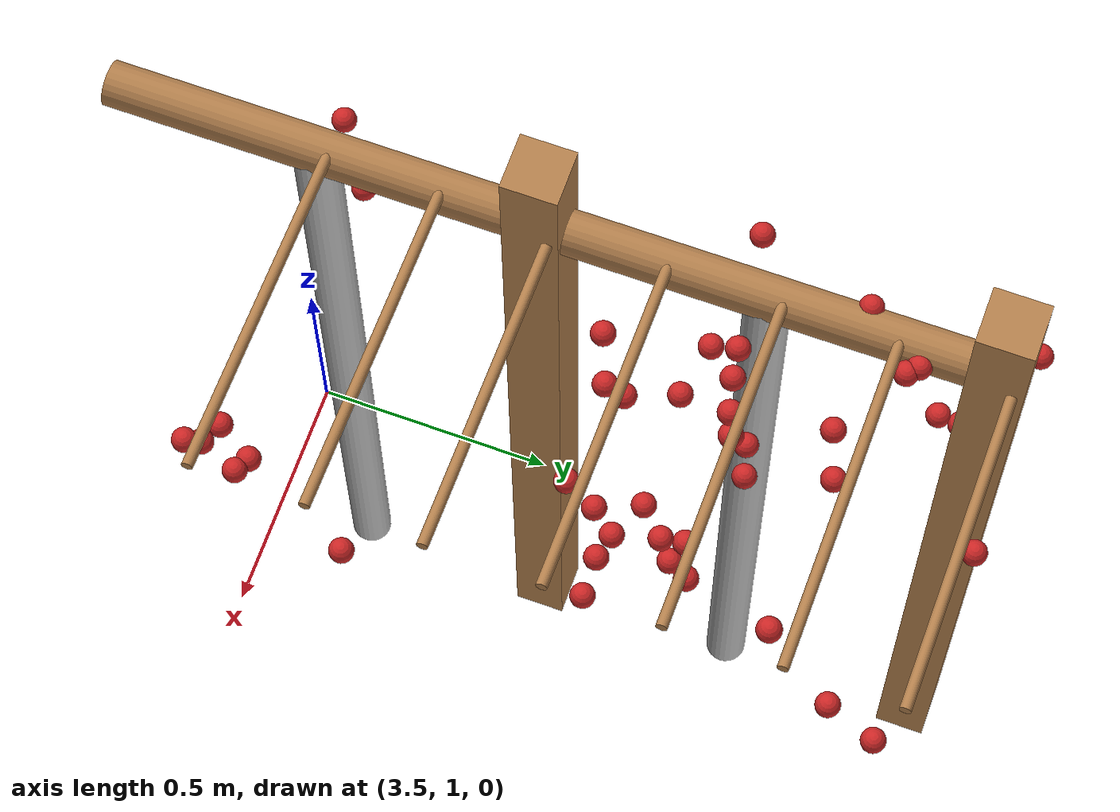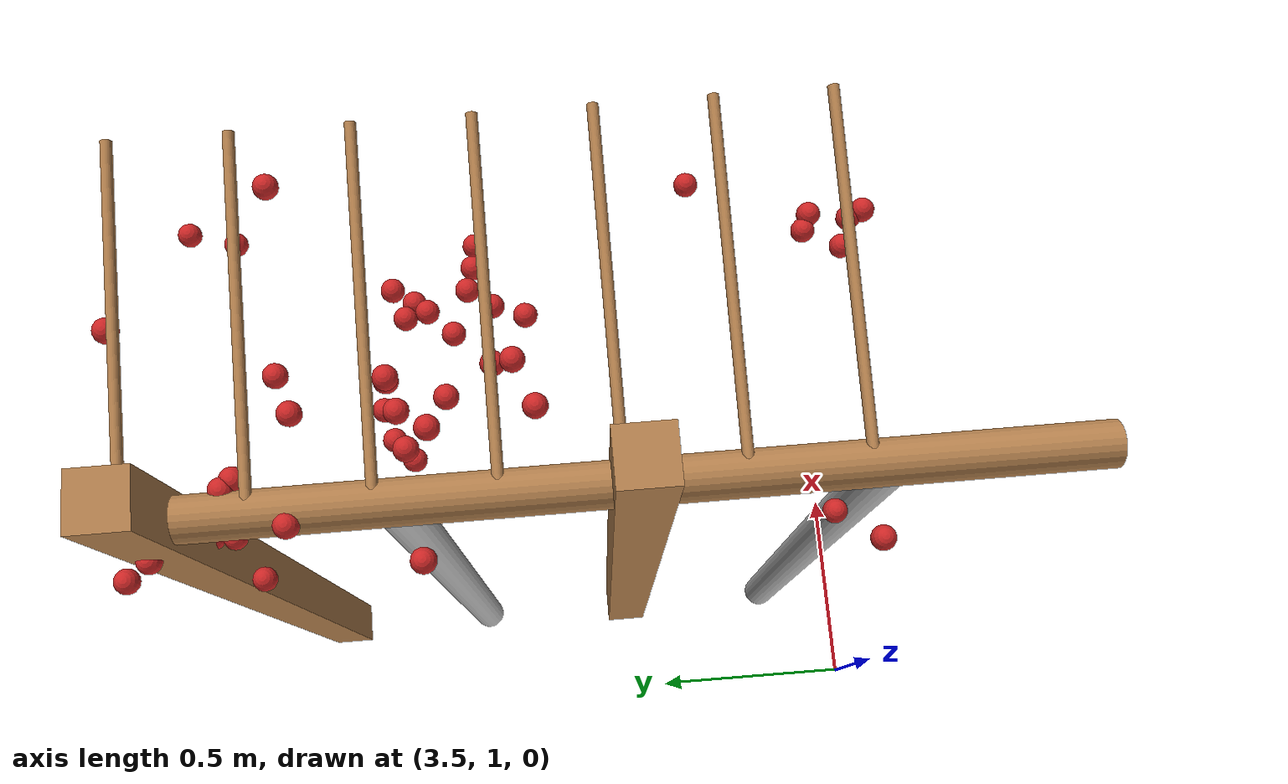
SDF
<sdf version="1.4">
 <model name="pergola">
  <include><name>post_23</name><pose>3.75 1.6 0 0 0 0</pose><uri>model://post</uri></include>
  <include><name>post_24</name><pose>3.75 2.4000000000000004 0 0 0 0</pose><uri>model://post</uri></include>
  <include>
   <name>tree_19</name>
   <pose>3.75 1.2000000000000002 0 0 0 0</pose>
   <uri>model://tree_trunk</uri>
  </include>
  <include><name>tree_20</name><pose>3.75 2.0 0 0 0 0</pose><uri>model://tree_trunk</uri></include>
  <link name="baseBranch_19">
   <pose>3.75 1.2000000000000002 1.8 1.5707963267948966 0 0</pose>
   <collision name="collision">
    <geometry><cylinder><radius>0.04</radius><length>0.74</length></cylinder></geometry>
   </collision>
   <visual name="visual">
    <geometry><cylinder><radius>0.04</radius><length>0.74</length></cylinder></geometry>
    <material><script><name>Gazebo/WoodFloor</name></script></material>
   </visual>
   <inertial>
    <mass>10</mass>
    <inertia>
     <ixx>0.4603333333333333</ixx>
     <ixy>0.0</ixy>
     <ixz>0.0</ixz>
     <iyy>0.4603333333333333</iyy>
     <iyz>0.0</iyz>
     <izz>0.008</izz>
    </inertia>
   </inertial>
  </link>
  <link name="baseBranch_20">
   <pose>3.75 2.0 1.8 1.5707963267948966 0 0</pose>
   <collision name="collision">
    <geometry><cylinder><radius>0.04</radius><length>0.74</length></cylinder></geometry>
   </collision>
   <visual name="visual">
    <geometry><cylinder><radius>0.04</radius><length>0.74</length></cylinder></geometry>
    <material><script><name>Gazebo/WoodFloor</name></script></material>
   </visual>
   <inertial>
    <mass>10</mass>
    <inertia>
     <ixx>0.4603333333333333</ixx>
     <ixy>0.0</ixy>
     <ixz>0.0</ixz>
     <iyy>0.4603333333333333</iyy>
     <iyz>0.0</iyz>
     <izz>0.008</izz>
    </inertia>
   </inertial>
  </link>
  <link name="vine_156">
   <pose>4.0625 1.2300000000000002 1.85 0 1.4909663410826592 0</pose>
   <collision name="collision">
    <geometry><cylinder><radius>0.01</radius><length>0.6269968101992226</length></cylinder></geometry>
   </collision>
   <visual name="visual">
    <geometry><cylinder><radius>0.01</radius><length>0.6269968101992226</length></cylinder></geometry>
    <material><script><name>Gazebo/WoodFloor</name></script></material>
   </visual>
   <inertial>
    <mass>5</mass>
    <inertia>
     <ixx>0.1639270833333333</ixx>
     <ixy>0.0</ixy>
     <ixz>0.0</ixz>
     <iyy>0.1639270833333333</iyy>
     <iyz>0.0</iyz>
     <izz>0.00025</izz>
    </inertia>
   </inertial>
  </link>
  <link name="vine_158">
   <pose>4.0625 1.4300000000000002 1.85 0 1.4909663410826592 0</pose>
   <collision name="collision">
    <geometry><cylinder><radius>0.01</radius><length>0.6269968101992226</length></cylinder></geometry>
   </collision>
   <visual name="visual">
    <geometry><cylinder><radius>0.01</radius><length>0.6269968101992226</length></cylinder></geometry>
    <material><script><name>Gazebo/WoodFloor</name></script></material>
   </visual>
   <inertial>
    <mass>5</mass>
    <inertia>
     <ixx>0.1639270833333333</ixx>
     <ixy>0.0</ixy>
     <ixz>0.0</ixz>
     <iyy>0.1639270833333333</iyy>
     <iyz>0.0</iyz>
     <izz>0.00025</izz>
    </inertia>
   </inertial>
  </link>
  <link name="vine_160">
   <pose>4.0625 1.6300000000000001 1.85 0 1.4909663410826592 0</pose>
   <collision name="collision">
    <geometry><cylinder><radius>0.01</radius><length>0.6269968101992226</length></cylinder></geometry>
   </collision>
   <visual name="visual">
    <geometry><cylinder><radius>0.01</radius><length>0.6269968101992226</length></cylinder></geometry>
    <material><script><name>Gazebo/WoodFloor</name></script></material>
   </visual>
   <inertial>
    <mass>5</mass>
    <inertia>
     <ixx>0.1639270833333333</ixx>
     <ixy>0.0</ixy>
     <ixz>0.0</ixz>
     <iyy>0.1639270833333333</iyy>
     <iyz>0.0</iyz>
     <izz>0.00025</izz>
    </inertia>
   </inertial>
  </link>
  <link name="vine_162">
   <pose>4.0625 1.83 1.85 0 1.4909663410826592 0</pose>
   <collision name="collision">
    <geometry><cylinder><radius>0.01</radius><length>0.6269968101992226</length></cylinder></geometry>
   </collision>
   <visual name="visual">
    <geometry><cylinder><radius>0.01</radius><length>0.6269968101992226</length></cylinder></geometry>
    <material><script><name>Gazebo/WoodFloor</name></script></material>
   </visual>
   <inertial>
    <mass>5</mass>
    <inertia>
     <ixx>0.1639270833333333</ixx>
     <ixy>0.0</ixy>
     <ixz>0.0</ixz>
     <iyy>0.1639270833333333</iyy>
     <iyz>0.0</iyz>
     <izz>0.00025</izz>
    </inertia>
   </inertial>
  </link>
  <link name="vine_164">
   <pose>4.0625 2.03 1.85 0 1.4909663410826592 0</pose>
   <collision name="collision">
    <geometry><cylinder><radius>0.01</radius><length>0.6269968101992226</length></cylinder></geometry>
   </collision>
   <visual name="visual">
    <geometry><cylinder><radius>0.01</radius><length>0.6269968101992226</length></cylinder></geometry>
    <material><script><name>Gazebo/WoodFloor</name></script></material>
   </visual>
   <inertial>
    <mass>5</mass>
    <inertia>
     <ixx>0.1639270833333333</ixx>
     <ixy>0.0</ixy>
     <ixz>0.0</ixz>
     <iyy>0.1639270833333333</iyy>
     <iyz>0.0</iyz>
     <izz>0.00025</izz>
    </inertia>
   </inertial>
  </link>
  <link name="vine_166">
   <pose>4.0625 2.23 1.85 0 1.4909663410826592 0</pose>
   <collision name="collision">
    <geometry><cylinder><radius>0.01</radius><length>0.6269968101992226</length></cylinder></geometry>
   </collision>
   <visual name="visual">
    <geometry><cylinder><radius>0.01</radius><length>0.6269968101992226</length></cylinder></geometry>
    <material><script><name>Gazebo/WoodFloor</name></script></material>
   </visual>
   <inertial>
    <mass>5</mass>
    <inertia>
     <ixx>0.1639270833333333</ixx>
     <ixy>0.0</ixy>
     <ixz>0.0</ixz>
     <iyy>0.1639270833333333</iyy>
     <iyz>0.0</iyz>
     <izz>0.00025</izz>
    </inertia>
   </inertial>
  </link>
  <link name="vine_168">
   <pose>4.0625 2.43 1.85 0 1.4909663410826592 0</pose>
   <collision name="collision">
    <geometry><cylinder><radius>0.01</radius><length>0.6269968101992226</length></cylinder></geometry>
   </collision>
   <visual name="visual">
    <geometry><cylinder><radius>0.01</radius><length>0.6269968101992226</length></cylinder></geometry>
    <material><script><name>Gazebo/WoodFloor</name></script></material>
   </visual>
   <inertial>
    <mass>5</mass>
    <inertia>
     <ixx>0.1639270833333333</ixx>
     <ixy>0.0</ixy>
     <ixz>0.0</ixz>
     <iyy>0.1639270833333333</iyy>
     <iyz>0.0</iyz>
     <izz>0.00025</izz>
    </inertia>
   </inertial>
  </link>
  <link name="fruit_8">
   <pose>3.676006407062482 2.2650768706055735 1.5762889406739493 0 0 0</pose>
   <collision name="fruit_collision_8"><geometry><sphere><radius>0.022</radius></sphere></geometry></collision>
   <visual name="visual">
    <geometry><sphere><radius>0.022</radius></sphere></geometry>
    <material><script><name>Gazebo/Red</name></script></material>
   </visual>
   <inertial>
    <mass>0.05</mass>
    <inertia>
     <ixx>9.679999999999999e-06</ixx>
     <ixy>0.0</ixy>
     <ixz>0.0</ixz>
     <iyy>9.679999999999999e-06</iyy>
     <iyz>0.0</iyz>
     <izz>9.679999999999999e-06</izz>
    </inertia>
   </inertial>
   <sensor name="fruit_contact_8" type="contact">
    <plugin name="contact_plugin_8" filename="libcontact_plugin.so"/>
    <contact><collision>fruit_collision_8</collision><topic>fruit_contact_topic_8</topic></contact>
   </sensor>
  </link>
  <link name="fruit_57">
   <pose>3.9361323129504013 1.9135651414401171 1.7332009350218411 0 0 0</pose>
   <collision name="fruit_collision_57"><geometry><sphere><radius>0.022</radius></sphere></geometry></collision>
   <visual name="visual">
    <geometry><sphere><radius>0.022</radius></sphere></geometry>
    <material><script><name>Gazebo/Red</name></script></material>
   </visual>
   <inertial>
    <mass>0.05</mass>
    <inertia>
     <ixx>9.679999999999999e-06</ixx>
     <ixy>0.0</ixy>
     <ixz>0.0</ixz>
     <iyy>9.679999999999999e-06</iyy>
     <iyz>0.0</iyz>
     <izz>9.679999999999999e-06</izz>
    </inertia>
   </inertial>
   <sensor name="fruit_contact_57" type="contact">
    <plugin name="contact_plugin_57" filename="libcontact_plugin.so"/>
    <contact><collision>fruit_collision_57</collision><topic>fruit_contact_topic_57</topic></contact>
   </sensor>
  </link>
  <link name="fruit_83">
   <pose>4.2667190792807 1.8609789345773817 1.5706060055773154 0 0 0</pose>
   <collision name="fruit_collision_83"><geometry><sphere><radius>0.022</radius></sphere></geometry></collision>
   <visual name="visual">
    <geometry><sphere><radius>0.022</radius></sphere></geometry>
    <material><script><name>Gazebo/Red</name></script></material>
   </visual>
   <inertial>
    <mass>0.05</mass>
    <inertia>
     <ixx>9.679999999999999e-06</ixx>
     <ixy>0.0</ixy>
     <ixz>0.0</ixz>
     <iyy>9.679999999999999e-06</iyy>
     <iyz>0.0</iyz>
     <izz>9.679999999999999e-06</izz>
    </inertia>
   </inertial>
   <sensor name="fruit_contact_83" type="contact">
    <plugin name="contact_plugin_83" filename="libcontact_plugin.so"/>
    <contact><collision>fruit_collision_83</collision><topic>fruit_contact_topic_83</topic></contact>
   </sensor>
  </link>
  <link name="fruit_95">
   <pose>4.301185927190342 2.186084560641931 1.8156875277033604 0 0 0</pose>
   <collision name="fruit_collision_95"><geometry><sphere><radius>0.022</radius></sphere></geometry></collision>
   <visual name="visual">
    <geometry><sphere><radius>0.022</radius></sphere></geometry>
    <material><script><name>Gazebo/Red</name></script></material>
   </visual>
   <inertial>
    <mass>0.05</mass>
    <inertia>
     <ixx>9.679999999999999e-06</ixx>
     <ixy>0.0</ixy>
     <ixz>0.0</ixz>
     <iyy>9.679999999999999e-06</iyy>
     <iyz>0.0</iyz>
     <izz>9.679999999999999e-06</izz>
    </inertia>
   </inertial>
   <sensor name="fruit_contact_95" type="contact">
    <plugin name="contact_plugin_95" filename="libcontact_plugin.so"/>
    <contact><collision>fruit_collision_95</collision><topic>fruit_contact_topic_95</topic></contact>
   </sensor>
  </link>
  <link name="fruit_155">
   <pose>3.8711005714008366 1.9927011376451031 1.5640726454635676 0 0 0</pose>
   <collision name="fruit_collision_155"><geometry><sphere><radius>0.022</radius></sphere></geometry></collision>
   <visual name="visual">
    <geometry><sphere><radius>0.022</radius></sphere></geometry>
    <material><script><name>Gazebo/Red</name></script></material>
   </visual>
   <inertial>
    <mass>0.05</mass>
    <inertia>
     <ixx>9.679999999999999e-06</ixx>
     <ixy>0.0</ixy>
     <ixz>0.0</ixz>
     <iyy>9.679999999999999e-06</iyy>
     <iyz>0.0</iyz>
     <izz>9.679999999999999e-06</izz>
    </inertia>
   </inertial>
   <sensor name="fruit_contact_155" type="contact">
    <plugin name="contact_plugin_155" filename="libcontact_plugin.so"/>
    <contact><collision>fruit_collision_155</collision><topic>fruit_contact_topic_155</topic></contact>
   </sensor>
  </link>
  <link name="fruit_163">
   <pose>3.7216625745566 2.1677110068053027 1.8257030987460952 0 0 0</pose>
   <collision name="fruit_collision_163"><geometry><sphere><radius>0.022</radius></sphere></geometry></collision>
   <visual name="visual">
    <geometry><sphere><radius>0.022</radius></sphere></geometry>
    <material><script><name>Gazebo/Red</name></script></material>
   </visual>
   <inertial>
    <mass>0.05</mass>
    <inertia>
     <ixx>9.679999999999999e-06</ixx>
     <ixy>0.0</ixy>
     <ixz>0.0</ixz>
     <iyy>9.679999999999999e-06</iyy>
     <iyz>0.0</iyz>
     <izz>9.679999999999999e-06</izz>
    </inertia>
   </inertial>
   <sensor name="fruit_contact_163" type="contact">
    <plugin name="contact_plugin_163" filename="libcontact_plugin.so"/>
    <contact><collision>fruit_collision_163</collision><topic>fruit_contact_topic_163</topic></contact>
   </sensor>
  </link>
  <link name="fruit_178">
   <pose>4.197961908283461 1.1897041472636551 1.604897090031209 0 0 0</pose>
   <collision name="fruit_collision_178"><geometry><sphere><radius>0.022</radius></sphere></geometry></collision>
   <visual name="visual">
    <geometry><sphere><radius>0.022</radius></sphere></geometry>
    <material><script><name>Gazebo/Red</name></script></material>
   </visual>
   <inertial>
    <mass>0.05</mass>
    <inertia>
     <ixx>9.679999999999999e-06</ixx>
     <ixy>0.0</ixy>
     <ixz>0.0</ixz>
     <iyy>9.679999999999999e-06</iyy>
     <iyz>0.0</iyz>
     <izz>9.679999999999999e-06</izz>
    </inertia>
   </inertial>
   <sensor name="fruit_contact_178" type="contact">
    <plugin name="contact_plugin_178" filename="libcontact_plugin.so"/>
    <contact><collision>fruit_collision_178</collision><topic>fruit_contact_topic_178</topic></contact>
   </sensor>
  </link>
  <link name="fruit_186">
   <pose>3.8673598561128717 1.9406960679267722 1.8051530244516856 0 0 0</pose>
   <collision name="fruit_collision_186"><geometry><sphere><radius>0.022</radius></sphere></geometry></collision>
   <visual name="visual">
    <geometry><sphere><radius>0.022</radius></sphere></geometry>
    <material><script><name>Gazebo/Red</name></script></material>
   </visual>
   <inertial>
    <mass>0.05</mass>
    <inertia>
     <ixx>9.679999999999999e-06</ixx>
     <ixy>0.0</ixy>
     <ixz>0.0</ixz>
     <iyy>9.679999999999999e-06</iyy>
     <iyz>0.0</iyz>
     <izz>9.679999999999999e-06</izz>
    </inertia>
   </inertial>
   <sensor name="fruit_contact_186" type="contact">
    <plugin name="contact_plugin_186" filename="libcontact_plugin.so"/>
    <contact><collision>fruit_collision_186</collision><topic>fruit_contact_topic_186</topic></contact>
   </sensor>
  </link>
  <link name="fruit_189">
   <pose>4.33940653644324 1.4624821867592084 1.6070610645935492 0 0 0</pose>
   <collision name="fruit_collision_189"><geometry><sphere><radius>0.022</radius></sphere></geometry></collision>
   <visual name="visual">
    <geometry><sphere><radius>0.022</radius></sphere></geometry>
    <material><script><name>Gazebo/Red</name></script></material>
   </visual>
   <inertial>
    <mass>0.05</mass>
    <inertia>
     <ixx>9.679999999999999e-06</ixx>
     <ixy>0.0</ixy>
     <ixz>0.0</ixz>
     <iyy>9.679999999999999e-06</iyy>
     <iyz>0.0</iyz>
     <izz>9.679999999999999e-06</izz>
    </inertia>
   </inertial>
   <sensor name="fruit_contact_189" type="contact">
    <plugin name="contact_plugin_189" filename="libcontact_plugin.so"/>
    <contact><collision>fruit_collision_189</collision><topic>fruit_contact_topic_189</topic></contact>
   </sensor>
  </link>
  <link name="fruit_208">
   <pose>4.069500883490373 2.4527747593494102 1.818738600354052 0 0 0</pose>
   <collision name="fruit_collision_208"><geometry><sphere><radius>0.022</radius></sphere></geometry></collision>
   <visual name="visual">
    <geometry><sphere><radius>0.022</radius></sphere></geometry>
    <material><script><name>Gazebo/Red</name></script></material>
   </visual>
   <inertial>
    <mass>0.05</mass>
    <inertia>
     <ixx>9.679999999999999e-06</ixx>
     <ixy>0.0</ixy>
     <ixz>0.0</ixz>
     <iyy>9.679999999999999e-06</iyy>
     <iyz>0.0</iyz>
     <izz>9.679999999999999e-06</izz>
    </inertia>
   </inertial>
   <sensor name="fruit_contact_208" type="contact">
    <plugin name="contact_plugin_208" filename="libcontact_plugin.so"/>
    <contact><collision>fruit_collision_208</collision><topic>fruit_contact_topic_208</topic></contact>
   </sensor>
  </link>
  <link name="fruit_223">
   <pose>3.8956518178005966 1.7637184672781563 1.7816706102022415 0 0 0</pose>
   <collision name="fruit_collision_223"><geometry><sphere><radius>0.022</radius></sphere></geometry></collision>
   <visual name="visual">
    <geometry><sphere><radius>0.022</radius></sphere></geometry>
    <material><script><name>Gazebo/Red</name></script></material>
   </visual>
   <inertial>
    <mass>0.05</mass>
    <inertia>
     <ixx>9.679999999999999e-06</ixx>
     <ixy>0.0</ixy>
     <ixz>0.0</ixz>
     <iyy>9.679999999999999e-06</iyy>
     <iyz>0.0</iyz>
     <izz>9.679999999999999e-06</izz>
    </inertia>
   </inertial>
   <sensor name="fruit_contact_223" type="contact">
    <plugin name="contact_plugin_223" filename="libcontact_plugin.so"/>
    <contact><collision>fruit_collision_223</collision><topic>fruit_contact_topic_223</topic></contact>
   </sensor>
  </link>
  <link name="fruit_269">
   <pose>4.307890976531679 2.303075277976322 1.5666094583672132 0 0 0</pose>
   <collision name="fruit_collision_269"><geometry><sphere><radius>0.022</radius></sphere></geometry></collision>
   <visual name="visual">
    <geometry><sphere><radius>0.022</radius></sphere></geometry>
    <material><script><name>Gazebo/Red</name></script></material>
   </visual>
   <inertial>
    <mass>0.05</mass>
    <inertia>
     <ixx>9.679999999999999e-06</ixx>
     <ixy>0.0</ixy>
     <ixz>0.0</ixz>
     <iyy>9.679999999999999e-06</iyy>
     <iyz>0.0</iyz>
     <izz>9.679999999999999e-06</izz>
    </inertia>
   </inertial>
   <sensor name="fruit_contact_269" type="contact">
    <plugin name="contact_plugin_269" filename="libcontact_plugin.so"/>
    <contact><collision>fruit_collision_269</collision><topic>fruit_contact_topic_269</topic></contact>
   </sensor>
  </link>
  <link name="fruit_279">
   <pose>4.104877058534046 1.7742975596749313 1.6287608941284089 0 0 0</pose>
   <collision name="fruit_collision_279"><geometry><sphere><radius>0.022</radius></sphere></geometry></collision>
   <visual name="visual">
    <geometry><sphere><radius>0.022</radius></sphere></geometry>
    <material><script><name>Gazebo/Red</name></script></material>
   </visual>
   <inertial>
    <mass>0.05</mass>
    <inertia>
     <ixx>9.679999999999999e-06</ixx>
     <ixy>0.0</ixy>
     <ixz>0.0</ixz>
     <iyy>9.679999999999999e-06</iyy>
     <iyz>0.0</iyz>
     <izz>9.679999999999999e-06</izz>
    </inertia>
   </inertial>
   <sensor name="fruit_contact_279" type="contact">
    <plugin name="contact_plugin_279" filename="libcontact_plugin.so"/>
    <contact><collision>fruit_collision_279</collision><topic>fruit_contact_topic_279</topic></contact>
   </sensor>
  </link>
  <link name="fruit_283">
   <pose>4.090861763009754 1.9066144626308015 1.5973363994326608 0 0 0</pose>
   <collision name="fruit_collision_283"><geometry><sphere><radius>0.022</radius></sphere></geometry></collision>
   <visual name="visual">
    <geometry><sphere><radius>0.022</radius></sphere></geometry>
    <material><script><name>Gazebo/Red</name></script></material>
   </visual>
   <inertial>
    <mass>0.05</mass>
    <inertia>
     <ixx>9.679999999999999e-06</ixx>
     <ixy>0.0</ixy>
     <ixz>0.0</ixz>
     <iyy>9.679999999999999e-06</iyy>
     <iyz>0.0</iyz>
     <izz>9.679999999999999e-06</izz>
    </inertia>
   </inertial>
   <sensor name="fruit_contact_283" type="contact">
    <plugin name="contact_plugin_283" filename="libcontact_plugin.so"/>
    <contact><collision>fruit_collision_283</collision><topic>fruit_contact_topic_283</topic></contact>
   </sensor>
  </link>
  <link name="fruit_286">
   <pose>3.921469292328914 2.1721620067773264 1.7595511028058892 0 0 0</pose>
   <collision name="fruit_collision_286"><geometry><sphere><radius>0.022</radius></sphere></geometry></collision>
   <visual name="visual">
    <geometry><sphere><radius>0.022</radius></sphere></geometry>
    <material><script><name>Gazebo/Red</name></script></material>
   </visual>
   <inertial>
    <mass>0.05</mass>
    <inertia>
     <ixx>9.679999999999999e-06</ixx>
     <ixy>0.0</ixy>
     <ixz>0.0</ixz>
     <iyy>9.679999999999999e-06</iyy>
     <iyz>0.0</iyz>
     <izz>9.679999999999999e-06</izz>
    </inertia>
   </inertial>
   <sensor name="fruit_contact_286" type="contact">
    <plugin name="contact_plugin_286" filename="libcontact_plugin.so"/>
    <contact><collision>fruit_collision_286</collision><topic>fruit_contact_topic_286</topic></contact>
   </sensor>
  </link>
  <link name="fruit_315">
   <pose>3.7353817605391018 1.9532888564288293 1.784327385788886 0 0 0</pose>
   <collision name="fruit_collision_315"><geometry><sphere><radius>0.022</radius></sphere></geometry></collision>
   <visual name="visual">
    <geometry><sphere><radius>0.022</radius></sphere></geometry>
    <material><script><name>Gazebo/Red</name></script></material>
   </visual>
   <inertial>
    <mass>0.05</mass>
    <inertia>
     <ixx>9.679999999999999e-06</ixx>
     <ixy>0.0</ixy>
     <ixz>0.0</ixz>
     <iyy>9.679999999999999e-06</iyy>
     <iyz>0.0</iyz>
     <izz>9.679999999999999e-06</izz>
    </inertia>
   </inertial>
   <sensor name="fruit_contact_315" type="contact">
    <plugin name="contact_plugin_315" filename="libcontact_plugin.so"/>
    <contact><collision>fruit_collision_315</collision><topic>fruit_contact_topic_315</topic></contact>
   </sensor>
  </link>
  <link name="fruit_350">
   <pose>3.8062336221605646 2.255665683705596 1.8076341787049552 0 0 0</pose>
   <collision name="fruit_collision_350"><geometry><sphere><radius>0.022</radius></sphere></geometry></collision>
   <visual name="visual">
    <geometry><sphere><radius>0.022</radius></sphere></geometry>
    <material><script><name>Gazebo/Red</name></script></material>
   </visual>
   <inertial>
    <mass>0.05</mass>
    <inertia>
     <ixx>9.679999999999999e-06</ixx>
     <ixy>0.0</ixy>
     <ixz>0.0</ixz>
     <iyy>9.679999999999999e-06</iyy>
     <iyz>0.0</iyz>
     <izz>9.679999999999999e-06</izz>
    </inertia>
   </inertial>
   <sensor name="fruit_contact_350" type="contact">
    <plugin name="contact_plugin_350" filename="libcontact_plugin.so"/>
    <contact><collision>fruit_collision_350</collision><topic>fruit_contact_topic_350</topic></contact>
   </sensor>
  </link>
  <link name="fruit_369">
   <pose>3.759000258667779 2.358733231369679 1.561660712672167 0 0 0</pose>
   <collision name="fruit_collision_369"><geometry><sphere><radius>0.022</radius></sphere></geometry></collision>
   <visual name="visual">
    <geometry><sphere><radius>0.022</radius></sphere></geometry>
    <material><script><name>Gazebo/Red</name></script></material>
   </visual>
   <inertial>
    <mass>0.05</mass>
    <inertia>
     <ixx>9.679999999999999e-06</ixx>
     <ixy>0.0</ixy>
     <ixz>0.0</ixz>
     <iyy>9.679999999999999e-06</iyy>
     <iyz>0.0</iyz>
     <izz>9.679999999999999e-06</izz>
    </inertia>
   </inertial>
   <sensor name="fruit_contact_369" type="contact">
    <plugin name="contact_plugin_369" filename="libcontact_plugin.so"/>
    <contact><collision>fruit_collision_369</collision><topic>fruit_contact_topic_369</topic></contact>
   </sensor>
  </link>
  <link name="fruit_372">
   <pose>4.253187365403175 1.149392021733807 1.633120015647524 0 0 0</pose>
   <collision name="fruit_collision_372"><geometry><sphere><radius>0.022</radius></sphere></geometry></collision>
   <visual name="visual">
    <geometry><sphere><radius>0.022</radius></sphere></geometry>
    <material><script><name>Gazebo/Red</name></script></material>
   </visual>
   <inertial>
    <mass>0.05</mass>
    <inertia>
     <ixx>9.679999999999999e-06</ixx>
     <ixy>0.0</ixy>
     <ixz>0.0</ixz>
     <iyy>9.679999999999999e-06</iyy>
     <iyz>0.0</iyz>
     <izz>9.679999999999999e-06</izz>
    </inertia>
   </inertial>
   <sensor name="fruit_contact_372" type="contact">
    <plugin name="contact_plugin_372" filename="libcontact_plugin.so"/>
    <contact><collision>fruit_collision_372</collision><topic>fruit_contact_topic_372</topic></contact>
   </sensor>
  </link>
  <link name="fruit_422">
   <pose>3.9949429824086877 2.19803512601655 1.7376058160941192 0 0 0</pose>
   <collision name="fruit_collision_422"><geometry><sphere><radius>0.022</radius></sphere></geometry></collision>
   <visual name="visual">
    <geometry><sphere><radius>0.022</radius></sphere></geometry>
    <material><script><name>Gazebo/Red</name></script></material>
   </visual>
   <inertial>
    <mass>0.05</mass>
    <inertia>
     <ixx>9.679999999999999e-06</ixx>
     <ixy>0.0</ixy>
     <ixz>0.0</ixz>
     <iyy>9.679999999999999e-06</iyy>
     <iyz>0.0</iyz>
     <izz>9.679999999999999e-06</izz>
    </inertia>
   </inertial>
   <sensor name="fruit_contact_422" type="contact">
    <plugin name="contact_plugin_422" filename="libcontact_plugin.so"/>
    <contact><collision>fruit_collision_422</collision><topic>fruit_contact_topic_422</topic></contact>
   </sensor>
  </link>
  <link name="fruit_447">
   <pose>3.9785184481252465 1.7963353760124399 1.7786980864682906 0 0 0</pose>
   <collision name="fruit_collision_447"><geometry><sphere><radius>0.022</radius></sphere></geometry></collision>
   <visual name="visual">
    <geometry><sphere><radius>0.022</radius></sphere></geometry>
    <material><script><name>Gazebo/Red</name></script></material>
   </visual>
   <inertial>
    <mass>0.05</mass>
    <inertia>
     <ixx>9.679999999999999e-06</ixx>
     <ixy>0.0</ixy>
     <ixz>0.0</ixz>
     <iyy>9.679999999999999e-06</iyy>
     <iyz>0.0</iyz>
     <izz>9.679999999999999e-06</izz>
    </inertia>
   </inertial>
   <sensor name="fruit_contact_447" type="contact">
    <plugin name="contact_plugin_447" filename="libcontact_plugin.so"/>
    <contact><collision>fruit_collision_447</collision><topic>fruit_contact_topic_447</topic></contact>
   </sensor>
  </link>
  <link name="fruit_474">
   <pose>4.128786302933672 1.9928160062900515 1.591700708201702 0 0 0</pose>
   <collision name="fruit_collision_474"><geometry><sphere><radius>0.022</radius></sphere></geometry></collision>
   <visual name="visual">
    <geometry><sphere><radius>0.022</radius></sphere></geometry>
    <material><script><name>Gazebo/Red</name></script></material>
   </visual>
   <inertial>
    <mass>0.05</mass>
    <inertia>
     <ixx>9.679999999999999e-06</ixx>
     <ixy>0.0</ixy>
     <ixz>0.0</ixz>
     <iyy>9.679999999999999e-06</iyy>
     <iyz>0.0</iyz>
     <izz>9.679999999999999e-06</izz>
    </inertia>
   </inertial>
   <sensor name="fruit_contact_474" type="contact">
    <plugin name="contact_plugin_474" filename="libcontact_plugin.so"/>
    <contact><collision>fruit_collision_474</collision><topic>fruit_contact_topic_474</topic></contact>
   </sensor>
  </link>
  <link name="fruit_475">
   <pose>3.9610821203095865 2.0062513349324957 1.7904510279720622 0 0 0</pose>
   <collision name="fruit_collision_475"><geometry><sphere><radius>0.022</radius></sphere></geometry></collision>
   <visual name="visual">
    <geometry><sphere><radius>0.022</radius></sphere></geometry>
    <material><script><name>Gazebo/Red</name></script></material>
   </visual>
   <inertial>
    <mass>0.05</mass>
    <inertia>
     <ixx>9.679999999999999e-06</ixx>
     <ixy>0.0</ixy>
     <ixz>0.0</ixz>
     <iyy>9.679999999999999e-06</iyy>
     <iyz>0.0</iyz>
     <izz>9.679999999999999e-06</izz>
    </inertia>
   </inertial>
   <sensor name="fruit_contact_475" type="contact">
    <plugin name="contact_plugin_475" filename="libcontact_plugin.so"/>
    <contact><collision>fruit_collision_475</collision><topic>fruit_contact_topic_475</topic></contact>
   </sensor>
  </link>
  <link name="fruit_501">
   <pose>4.186022776630939 2.0143532567008555 1.586586272086282 0 0 0</pose>
   <collision name="fruit_collision_501"><geometry><sphere><radius>0.022</radius></sphere></geometry></collision>
   <visual name="visual">
    <geometry><sphere><radius>0.022</radius></sphere></geometry>
    <material><script><name>Gazebo/Red</name></script></material>
   </visual>
   <inertial>
    <mass>0.05</mass>
    <inertia>
     <ixx>9.679999999999999e-06</ixx>
     <ixy>0.0</ixy>
     <ixz>0.0</ixz>
     <iyy>9.679999999999999e-06</iyy>
     <iyz>0.0</iyz>
     <izz>9.679999999999999e-06</izz>
    </inertia>
   </inertial>
   <sensor name="fruit_contact_501" type="contact">
    <plugin name="contact_plugin_501" filename="libcontact_plugin.so"/>
    <contact><collision>fruit_collision_501</collision><topic>fruit_contact_topic_501</topic></contact>
   </sensor>
  </link>
  <link name="fruit_502">
   <pose>3.6995548154458198 2.41850713608769 1.721297952366952 0 0 0</pose>
   <collision name="fruit_collision_502"><geometry><sphere><radius>0.022</radius></sphere></geometry></collision>
   <visual name="visual">
    <geometry><sphere><radius>0.022</radius></sphere></geometry>
    <material><script><name>Gazebo/Red</name></script></material>
   </visual>
   <inertial>
    <mass>0.05</mass>
    <inertia>
     <ixx>9.679999999999999e-06</ixx>
     <ixy>0.0</ixy>
     <ixz>0.0</ixz>
     <iyy>9.679999999999999e-06</iyy>
     <iyz>0.0</iyz>
     <izz>9.679999999999999e-06</izz>
    </inertia>
   </inertial>
   <sensor name="fruit_contact_502" type="contact">
    <plugin name="contact_plugin_502" filename="libcontact_plugin.so"/>
    <contact><collision>fruit_collision_502</collision><topic>fruit_contact_topic_502</topic></contact>
   </sensor>
  </link>
  <link name="fruit_514">
   <pose>3.8424148085354677 1.980559761898134 1.7724469809190542 0 0 0</pose>
   <collision name="fruit_collision_514"><geometry><sphere><radius>0.022</radius></sphere></geometry></collision>
   <visual name="visual">
    <geometry><sphere><radius>0.022</radius></sphere></geometry>
    <material><script><name>Gazebo/Red</name></script></material>
   </visual>
   <inertial>
    <mass>0.05</mass>
    <inertia>
     <ixx>9.679999999999999e-06</ixx>
     <ixy>0.0</ixy>
     <ixz>0.0</ixz>
     <iyy>9.679999999999999e-06</iyy>
     <iyz>0.0</iyz>
     <izz>9.679999999999999e-06</izz>
    </inertia>
   </inertial>
   <sensor name="fruit_contact_514" type="contact">
    <plugin name="contact_plugin_514" filename="libcontact_plugin.so"/>
    <contact><collision>fruit_collision_514</collision><topic>fruit_contact_topic_514</topic></contact>
   </sensor>
  </link>
  <link name="fruit_536">
   <pose>3.7560743281449556 2.318761842599 1.5624173171688145 0 0 0</pose>
   <collision name="fruit_collision_536"><geometry><sphere><radius>0.022</radius></sphere></geometry></collision>
   <visual name="visual">
    <geometry><sphere><radius>0.022</radius></sphere></geometry>
    <material><script><name>Gazebo/Red</name></script></material>
   </visual>
   <inertial>
    <mass>0.05</mass>
    <inertia>
     <ixx>9.679999999999999e-06</ixx>
     <ixy>0.0</ixy>
     <ixz>0.0</ixz>
     <iyy>9.679999999999999e-06</iyy>
     <iyz>0.0</iyz>
     <izz>9.679999999999999e-06</izz>
    </inertia>
   </inertial>
   <sensor name="fruit_contact_536" type="contact">
    <plugin name="contact_plugin_536" filename="libcontact_plugin.so"/>
    <contact><collision>fruit_collision_536</collision><topic>fruit_contact_topic_536</topic></contact>
   </sensor>
  </link>
  <link name="fruit_551">
   <pose>3.9026448791427004 1.9908475240409849 1.7907639431884228 0 0 0</pose>
   <collision name="fruit_collision_551"><geometry><sphere><radius>0.022</radius></sphere></geometry></collision>
   <visual name="visual">
    <geometry><sphere><radius>0.022</radius></sphere></geometry>
    <material><script><name>Gazebo/Red</name></script></material>
   </visual>
   <inertial>
    <mass>0.05</mass>
    <inertia>
     <ixx>9.679999999999999e-06</ixx>
     <ixy>0.0</ixy>
     <ixz>0.0</ixz>
     <iyy>9.679999999999999e-06</iyy>
     <iyz>0.0</iyz>
     <izz>9.679999999999999e-06</izz>
    </inertia>
   </inertial>
   <sensor name="fruit_contact_551" type="contact">
    <plugin name="contact_plugin_551" filename="libcontact_plugin.so"/>
    <contact><collision>fruit_collision_551</collision><topic>fruit_contact_topic_551</topic></contact>
   </sensor>
  </link>
  <link name="fruit_552">
   <pose>4.243674361682481 1.1754269281384155 1.62450602277005 0 0 0</pose>
   <collision name="fruit_collision_552"><geometry><sphere><radius>0.022</radius></sphere></geometry></collision>
   <visual name="visual">
    <geometry><sphere><radius>0.022</radius></sphere></geometry>
    <material><script><name>Gazebo/Red</name></script></material>
   </visual>
   <inertial>
    <mass>0.05</mass>
    <inertia>
     <ixx>9.679999999999999e-06</ixx>
     <ixy>0.0</ixy>
     <ixz>0.0</ixz>
     <iyy>9.679999999999999e-06</iyy>
     <iyz>0.0</iyz>
     <izz>9.679999999999999e-06</izz>
    </inertia>
   </inertial>
   <sensor name="fruit_contact_552" type="contact">
    <plugin name="contact_plugin_552" filename="libcontact_plugin.so"/>
    <contact><collision>fruit_collision_552</collision><topic>fruit_contact_topic_552</topic></contact>
   </sensor>
  </link>
  <link name="fruit_554">
   <pose>3.668270587321436 2.452632243285707 1.7282500866170676 0 0 0</pose>
   <collision name="fruit_collision_554"><geometry><sphere><radius>0.022</radius></sphere></geometry></collision>
   <visual name="visual">
    <geometry><sphere><radius>0.022</radius></sphere></geometry>
    <material><script><name>Gazebo/Red</name></script></material>
   </visual>
   <inertial>
    <mass>0.05</mass>
    <inertia>
     <ixx>9.679999999999999e-06</ixx>
     <ixy>0.0</ixy>
     <ixz>0.0</ixz>
     <iyy>9.679999999999999e-06</iyy>
     <iyz>0.0</iyz>
     <izz>9.679999999999999e-06</izz>
    </inertia>
   </inertial>
   <sensor name="fruit_contact_554" type="contact">
    <plugin name="contact_plugin_554" filename="libcontact_plugin.so"/>
    <contact><collision>fruit_collision_554</collision><topic>fruit_contact_topic_554</topic></contact>
   </sensor>
  </link>
  <link name="fruit_563">
   <pose>4.130663142761165 1.8325857365182767 1.617867656826868 0 0 0</pose>
   <collision name="fruit_collision_563"><geometry><sphere><radius>0.022</radius></sphere></geometry></collision>
   <visual name="visual">
    <geometry><sphere><radius>0.022</radius></sphere></geometry>
    <material><script><name>Gazebo/Red</name></script></material>
   </visual>
   <inertial>
    <mass>0.05</mass>
    <inertia>
     <ixx>9.679999999999999e-06</ixx>
     <ixy>0.0</ixy>
     <ixz>0.0</ixz>
     <iyy>9.679999999999999e-06</iyy>
     <iyz>0.0</iyz>
     <izz>9.679999999999999e-06</izz>
    </inertia>
   </inertial>
   <sensor name="fruit_contact_563" type="contact">
    <plugin name="contact_plugin_563" filename="libcontact_plugin.so"/>
    <contact><collision>fruit_collision_563</collision><topic>fruit_contact_topic_563</topic></contact>
   </sensor>
  </link>
  <link name="fruit_583">
   <pose>3.9738265549720704 2.014617191198008 1.7267322430937548 0 0 0</pose>
   <collision name="fruit_collision_583"><geometry><sphere><radius>0.022</radius></sphere></geometry></collision>
   <visual name="visual">
    <geometry><sphere><radius>0.022</radius></sphere></geometry>
    <material><script><name>Gazebo/Red</name></script></material>
   </visual>
   <inertial>
    <mass>0.05</mass>
    <inertia>
     <ixx>9.679999999999999e-06</ixx>
     <ixy>0.0</ixy>
     <ixz>0.0</ixz>
     <iyy>9.679999999999999e-06</iyy>
     <iyz>0.0</iyz>
     <izz>9.679999999999999e-06</izz>
    </inertia>
   </inertial>
   <sensor name="fruit_contact_583" type="contact">
    <plugin name="contact_plugin_583" filename="libcontact_plugin.so"/>
    <contact><collision>fruit_collision_583</collision><topic>fruit_contact_topic_583</topic></contact>
   </sensor>
  </link>
  <link name="fruit_585">
   <pose>4.209058611286979 1.8641267755140614 1.6093402818027762 0 0 0</pose>
   <collision name="fruit_collision_585"><geometry><sphere><radius>0.022</radius></sphere></geometry></collision>
   <visual name="visual">
    <geometry><sphere><radius>0.022</radius></sphere></geometry>
    <material><script><name>Gazebo/Red</name></script></material>
   </visual>
   <inertial>
    <mass>0.05</mass>
    <inertia>
     <ixx>9.679999999999999e-06</ixx>
     <ixy>0.0</ixy>
     <ixz>0.0</ixz>
     <iyy>9.679999999999999e-06</iyy>
     <iyz>0.0</iyz>
     <izz>9.679999999999999e-06</izz>
    </inertia>
   </inertial>
   <sensor name="fruit_contact_585" type="contact">
    <plugin name="contact_plugin_585" filename="libcontact_plugin.so"/>
    <contact><collision>fruit_collision_585</collision><topic>fruit_contact_topic_585</topic></contact>
   </sensor>
  </link>
  <link name="fruit_598">
   <pose>3.6506893859526697 1.9565807072897263 1.8089053759180904 0 0 0</pose>
   <collision name="fruit_collision_598"><geometry><sphere><radius>0.022</radius></sphere></geometry></collision>
   <visual name="visual">
    <geometry><sphere><radius>0.022</radius></sphere></geometry>
    <material><script><name>Gazebo/Red</name></script></material>
   </visual>
   <inertial>
    <mass>0.05</mass>
    <inertia>
     <ixx>9.679999999999999e-06</ixx>
     <ixy>0.0</ixy>
     <ixz>0.0</ixz>
     <iyy>9.679999999999999e-06</iyy>
     <iyz>0.0</iyz>
     <izz>9.679999999999999e-06</izz>
    </inertia>
   </inertial>
   <sensor name="fruit_contact_598" type="contact">
    <plugin name="contact_plugin_598" filename="libcontact_plugin.so"/>
    <contact><collision>fruit_collision_598</collision><topic>fruit_contact_topic_598</topic></contact>
   </sensor>
  </link>
  <link name="fruit_632">
   <pose>4.337546684193683 2.3917230125715494 1.5569083020724714 0 0 0</pose>
   <collision name="fruit_collision_632"><geometry><sphere><radius>0.022</radius></sphere></geometry></collision>
   <visual name="visual">
    <geometry><sphere><radius>0.022</radius></sphere></geometry>
    <material><script><name>Gazebo/Red</name></script></material>
   </visual>
   <inertial>
    <mass>0.05</mass>
    <inertia>
     <ixx>9.679999999999999e-06</ixx>
     <ixy>0.0</ixy>
     <ixz>0.0</ixz>
     <iyy>9.679999999999999e-06</iyy>
     <iyz>0.0</iyz>
     <izz>9.679999999999999e-06</izz>
    </inertia>
   </inertial>
   <sensor name="fruit_contact_632" type="contact">
    <plugin name="contact_plugin_632" filename="libcontact_plugin.so"/>
    <contact><collision>fruit_collision_632</collision><topic>fruit_contact_topic_632</topic></contact>
   </sensor>
  </link>
  <link name="fruit_670">
   <pose>4.1651887678615935 1.8757771978949103 1.6151271644911567 0 0 0</pose>
   <collision name="fruit_collision_670"><geometry><sphere><radius>0.022</radius></sphere></geometry></collision>
   <visual name="visual">
    <geometry><sphere><radius>0.022</radius></sphere></geometry>
    <material><script><name>Gazebo/Red</name></script></material>
   </visual>
   <inertial>
    <mass>0.05</mass>
    <inertia>
     <ixx>9.679999999999999e-06</ixx>
     <ixy>0.0</ixy>
     <ixz>0.0</ixz>
     <iyy>9.679999999999999e-06</iyy>
     <iyz>0.0</iyz>
     <izz>9.679999999999999e-06</izz>
    </inertia>
   </inertial>
   <sensor name="fruit_contact_670" type="contact">
    <plugin name="contact_plugin_670" filename="libcontact_plugin.so"/>
    <contact><collision>fruit_collision_670</collision><topic>fruit_contact_topic_670</topic></contact>
   </sensor>
  </link>
  <link name="fruit_674">
   <pose>4.265229169938891 1.242263162448107 1.6033254300608883 0 0 0</pose>
   <collision name="fruit_collision_674"><geometry><sphere><radius>0.022</radius></sphere></geometry></collision>
   <visual name="visual">
    <geometry><sphere><radius>0.022</radius></sphere></geometry>
    <material><script><name>Gazebo/Red</name></script></material>
   </visual>
   <inertial>
    <mass>0.05</mass>
    <inertia>
     <ixx>9.679999999999999e-06</ixx>
     <ixy>0.0</ixy>
     <ixz>0.0</ixz>
     <iyy>9.679999999999999e-06</iyy>
     <iyz>0.0</iyz>
     <izz>9.679999999999999e-06</izz>
    </inertia>
   </inertial>
   <sensor name="fruit_contact_674" type="contact">
    <plugin name="contact_plugin_674" filename="libcontact_plugin.so"/>
    <contact><collision>fruit_collision_674</collision><topic>fruit_contact_topic_674</topic></contact>
   </sensor>
  </link>
  <link name="fruit_680">
   <pose>3.969803485733066 2.044446488728165 1.5566137026668847 0 0 0</pose>
   <collision name="fruit_collision_680"><geometry><sphere><radius>0.022</radius></sphere></geometry></collision>
   <visual name="visual">
    <geometry><sphere><radius>0.022</radius></sphere></geometry>
    <material><script><name>Gazebo/Red</name></script></material>
   </visual>
   <inertial>
    <mass>0.05</mass>
    <inertia>
     <ixx>9.679999999999999e-06</ixx>
     <ixy>0.0</ixy>
     <ixz>0.0</ixz>
     <iyy>9.679999999999999e-06</iyy>
     <iyz>0.0</iyz>
     <izz>9.679999999999999e-06</izz>
    </inertia>
   </inertial>
   <sensor name="fruit_contact_680" type="contact">
    <plugin name="contact_plugin_680" filename="libcontact_plugin.so"/>
    <contact><collision>fruit_collision_680</collision><topic>fruit_contact_topic_680</topic></contact>
   </sensor>
  </link>
  <link name="fruit_697">
   <pose>3.7901495424758527 2.272697770905237 1.8105934624255287 0 0 0</pose>
   <collision name="fruit_collision_697"><geometry><sphere><radius>0.022</radius></sphere></geometry></collision>
   <visual name="visual">
    <geometry><sphere><radius>0.022</radius></sphere></geometry>
    <material><script><name>Gazebo/Red</name></script></material>
   </visual>
   <inertial>
    <mass>0.05</mass>
    <inertia>
     <ixx>9.679999999999999e-06</ixx>
     <ixy>0.0</ixy>
     <ixz>0.0</ixz>
     <iyy>9.679999999999999e-06</iyy>
     <iyz>0.0</iyz>
     <izz>9.679999999999999e-06</izz>
    </inertia>
   </inertial>
   <sensor name="fruit_contact_697" type="contact">
    <plugin name="contact_plugin_697" filename="libcontact_plugin.so"/>
    <contact><collision>fruit_collision_697</collision><topic>fruit_contact_topic_697</topic></contact>
   </sensor>
  </link>
  <link name="fruit_725">
   <pose>4.236698064713013 1.255202492059186 1.5974019317181285 0 0 0</pose>
   <collision name="fruit_collision_725"><geometry><sphere><radius>0.022</radius></sphere></geometry></collision>
   <visual name="visual">
    <geometry><sphere><radius>0.022</radius></sphere></geometry>
    <material><script><name>Gazebo/Red</name></script></material>
   </visual>
   <inertial>
    <mass>0.05</mass>
    <inertia>
     <ixx>9.679999999999999e-06</ixx>
     <ixy>0.0</ixy>
     <ixz>0.0</ixz>
     <iyy>9.679999999999999e-06</iyy>
     <iyz>0.0</iyz>
     <izz>9.679999999999999e-06</izz>
    </inertia>
   </inertial>
   <sensor name="fruit_contact_725" type="contact">
    <plugin name="contact_plugin_725" filename="libcontact_plugin.so"/>
    <contact><collision>fruit_collision_725</collision><topic>fruit_contact_topic_725</topic></contact>
   </sensor>
  </link>
  <link name="fruit_740">
   <pose>4.136724708476647 1.9522433967622725 1.5959893915442305 0 0 0</pose>
   <collision name="fruit_collision_740"><geometry><sphere><radius>0.022</radius></sphere></geometry></collision>
   <visual name="visual">
    <geometry><sphere><radius>0.022</radius></sphere></geometry>
    <material><script><name>Gazebo/Red</name></script></material>
   </visual>
   <inertial>
    <mass>0.05</mass>
    <inertia>
     <ixx>9.679999999999999e-06</ixx>
     <ixy>0.0</ixy>
     <ixz>0.0</ixz>
     <iyy>9.679999999999999e-06</iyy>
     <iyz>0.0</iyz>
     <izz>9.679999999999999e-06</izz>
    </inertia>
   </inertial>
   <sensor name="fruit_contact_740" type="contact">
    <plugin name="contact_plugin_740" filename="libcontact_plugin.so"/>
    <contact><collision>fruit_collision_740</collision><topic>fruit_contact_topic_740</topic></contact>
   </sensor>
  </link>
  <link name="fruit_748">
   <pose>3.980078537563345 1.8303066764113352 1.7604432965199555 0 0 0</pose>
   <collision name="fruit_collision_748"><geometry><sphere><radius>0.022</radius></sphere></geometry></collision>
   <visual name="visual">
    <geometry><sphere><radius>0.022</radius></sphere></geometry>
    <material><script><name>Gazebo/Red</name></script></material>
   </visual>
   <inertial>
    <mass>0.05</mass>
    <inertia>
     <ixx>9.679999999999999e-06</ixx>
     <ixy>0.0</ixy>
     <ixz>0.0</ixz>
     <iyy>9.679999999999999e-06</iyy>
     <iyz>0.0</iyz>
     <izz>9.679999999999999e-06</izz>
    </inertia>
   </inertial>
   <sensor name="fruit_contact_748" type="contact">
    <plugin name="contact_plugin_748" filename="libcontact_plugin.so"/>
    <contact><collision>fruit_collision_748</collision><topic>fruit_contact_topic_748</topic></contact>
   </sensor>
  </link>
  <link name="fruit_754">
   <pose>3.7086828561280942 1.2605025500658833 1.6108429437061125 0 0 0</pose>
   <collision name="fruit_collision_754"><geometry><sphere><radius>0.022</radius></sphere></geometry></collision>
   <visual name="visual">
    <geometry><sphere><radius>0.022</radius></sphere></geometry>
    <material><script><name>Gazebo/Red</name></script></material>
   </visual>
   <inertial>
    <mass>0.05</mass>
    <inertia>
     <ixx>9.679999999999999e-06</ixx>
     <ixy>0.0</ixy>
     <ixz>0.0</ixz>
     <iyy>9.679999999999999e-06</iyy>
     <iyz>0.0</iyz>
     <izz>9.679999999999999e-06</izz>
    </inertia>
   </inertial>
   <sensor name="fruit_contact_754" type="contact">
    <plugin name="contact_plugin_754" filename="libcontact_plugin.so"/>
    <contact><collision>fruit_collision_754</collision><topic>fruit_contact_topic_754</topic></contact>
   </sensor>
  </link>
  <link name="fruit_780">
   <pose>4.162244852157429 1.9774006137255997 1.5758445032758024 0 0 0</pose>
   <collision name="fruit_collision_780"><geometry><sphere><radius>0.022</radius></sphere></geometry></collision>
   <visual name="visual">
    <geometry><sphere><radius>0.022</radius></sphere></geometry>
    <material><script><name>Gazebo/Red</name></script></material>
   </visual>
   <inertial>
    <mass>0.05</mass>
    <inertia>
     <ixx>9.679999999999999e-06</ixx>
     <ixy>0.0</ixy>
     <ixz>0.0</ixz>
     <iyy>9.679999999999999e-06</iyy>
     <iyz>0.0</iyz>
     <izz>9.679999999999999e-06</izz>
    </inertia>
   </inertial>
   <sensor name="fruit_contact_780" type="contact">
    <plugin name="contact_plugin_780" filename="libcontact_plugin.so"/>
    <contact><collision>fruit_collision_780</collision><topic>fruit_contact_topic_780</topic></contact>
   </sensor>
  </link>
  <link name="fruit_809">
   <pose>3.9134179799177344 2.028903241400109 1.5515978658048493 0 0 0</pose>
   <collision name="fruit_collision_809"><geometry><sphere><radius>0.022</radius></sphere></geometry></collision>
   <visual name="visual">
    <geometry><sphere><radius>0.022</radius></sphere></geometry>
    <material><script><name>Gazebo/Red</name></script></material>
   </visual>
   <inertial>
    <mass>0.05</mass>
    <inertia>
     <ixx>9.679999999999999e-06</ixx>
     <ixy>0.0</ixy>
     <ixz>0.0</ixz>
     <iyy>9.679999999999999e-06</iyy>
     <iyz>0.0</iyz>
     <izz>9.679999999999999e-06</izz>
    </inertia>
   </inertial>
   <sensor name="fruit_contact_809" type="contact">
    <plugin name="contact_plugin_809" filename="libcontact_plugin.so"/>
    <contact><collision>fruit_collision_809</collision><topic>fruit_contact_topic_809</topic></contact>
   </sensor>
  </link>
  <link name="fruit_821">
   <pose>3.6410137037005437 1.204392912822723 1.7079924021071042 0 0 0</pose>
   <collision name="fruit_collision_821"><geometry><sphere><radius>0.022</radius></sphere></geometry></collision>
   <visual name="visual">
    <geometry><sphere><radius>0.022</radius></sphere></geometry>
    <material><script><name>Gazebo/Red</name></script></material>
   </visual>
   <inertial>
    <mass>0.05</mass>
    <inertia>
     <ixx>9.679999999999999e-06</ixx>
     <ixy>0.0</ixy>
     <ixz>0.0</ixz>
     <iyy>9.679999999999999e-06</iyy>
     <iyz>0.0</iyz>
     <izz>9.679999999999999e-06</izz>
    </inertia>
   </inertial>
   <sensor name="fruit_contact_821" type="contact">
    <plugin name="contact_plugin_821" filename="libcontact_plugin.so"/>
    <contact><collision>fruit_collision_821</collision><topic>fruit_contact_topic_821</topic></contact>
   </sensor>
  </link>
 </model>
</sdf>
